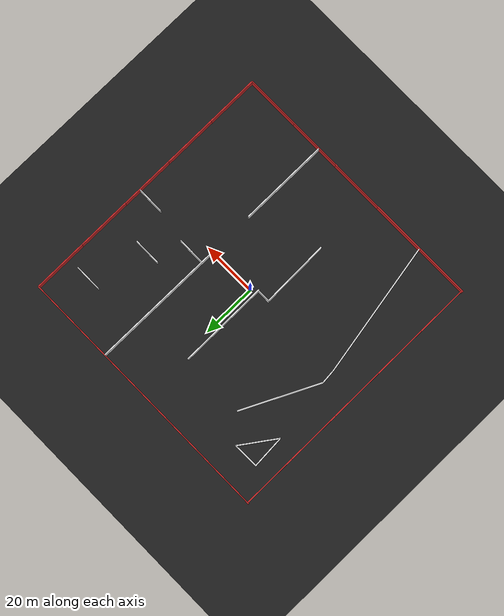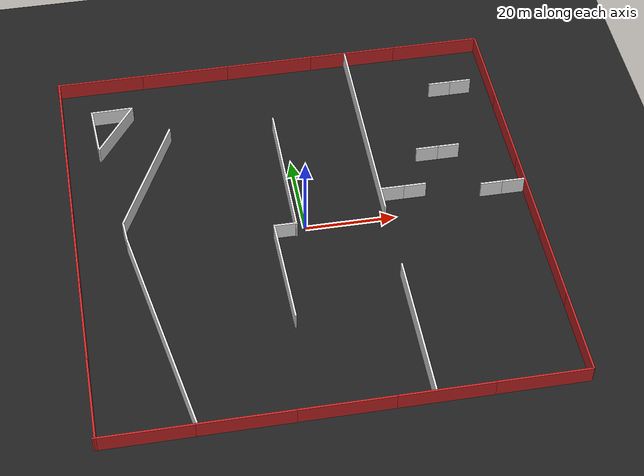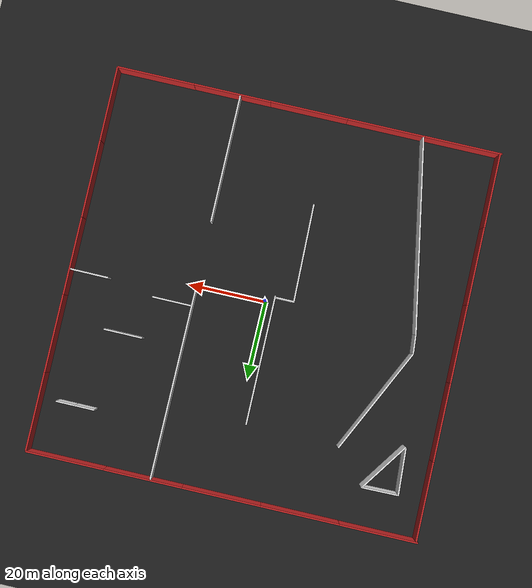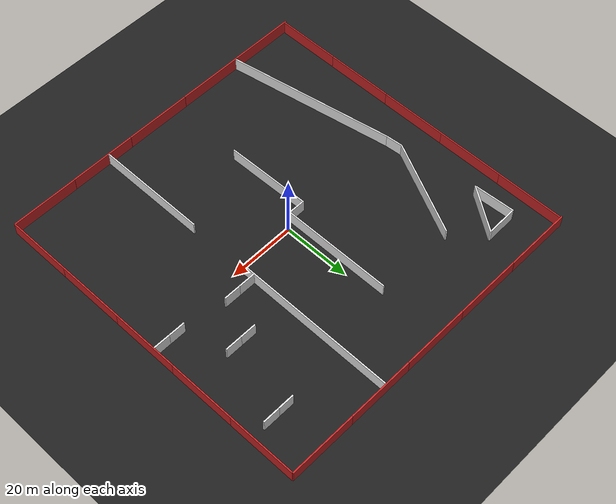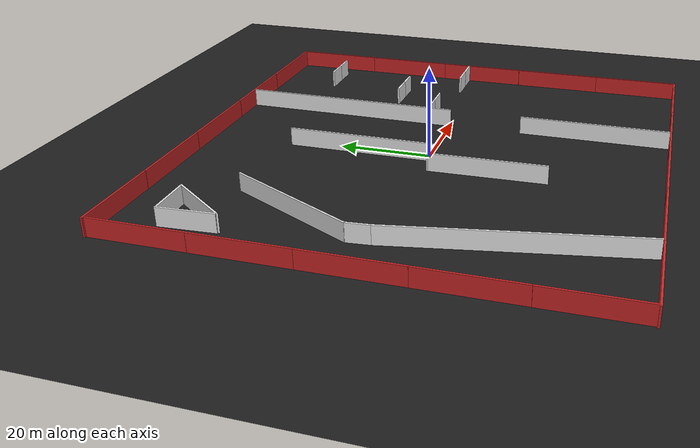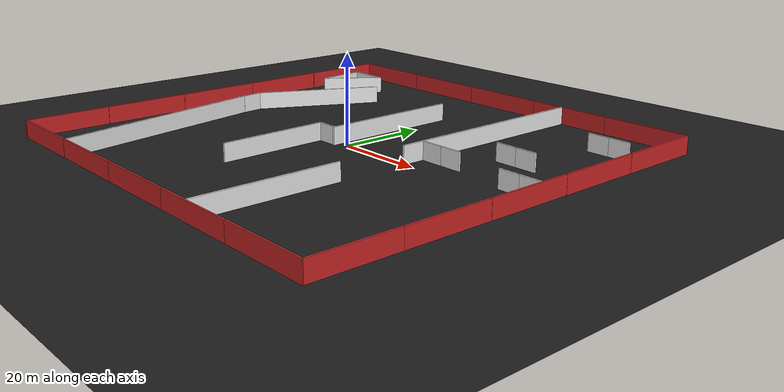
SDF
<sdf version="1.6">
 <world name="default">
  <model name="ground_plane">
   <static>1</static>
   <link name="link">
    <collision name="collision">
     <geometry><plane><normal>0 0 1</normal><size>1000 1000</size></plane></geometry>
     <surface><friction><ode><mu>100000</mu><mu2>50000</mu2></ode></friction></surface>
    </collision>
    <visual name="visual">
     <cast_shadows>0</cast_shadows>
     <geometry><plane><normal>0 0 1</normal><size>100 100</size></plane></geometry>
     <material>
      <script><uri>file://media/materials/scripts/gazebo.material</uri><name>Gazebo/Black</name></script>
     </material>
    </visual>
   </link>
  </model>
  <model name="grey_wall">
   <static>1</static>
   <link name="link">
    <pose>0 0 1.4 0 -0 0</pose>
    <collision name="collision"><geometry><box><size>20 0.4 4</size></box></geometry></collision>
    <visual name="visual">
     <cast_shadows>0</cast_shadows>
     <geometry><box><size>20 0.4 4</size></box></geometry>
     <material>
      <script>
       <uri>model://grey_wall/materials/scripts</uri>
       <uri>model://grey_wall/materials/textures</uri>
       <name>Gazebo/Red</name>
      </script>
     </material>
    </visual>
   </link>
   <pose>39.8972 -49.6685 0.7 0 -0 0</pose>
  </model>
  <model name="grey_wall_clone">
   <static>1</static>
   <link name="link">
    <pose>0 0 1.4 0 -0 0</pose>
    <collision name="collision"><geometry><box><size>20 0.4 4</size></box></geometry></collision>
    <visual name="visual">
     <cast_shadows>0</cast_shadows>
     <geometry><box><size>20 0.4 4</size></box></geometry>
     <material>
      <script>
       <uri>model://grey_wall/materials/scripts</uri>
       <uri>model://grey_wall/materials/textures</uri>
       <name>Gazebo/Red</name>
      </script>
     </material>
    </visual>
   </link>
   <pose>20.0314 -49.6981 0.7 0 -0 0</pose>
  </model>
  <model name="grey_wall_clone_clone">
   <static>1</static>
   <link name="link">
    <pose>0 0 1.4 0 -0 0</pose>
    <collision name="collision"><geometry><box><size>20 0.4 4</size></box></geometry></collision>
    <visual name="visual">
     <cast_shadows>0</cast_shadows>
     <geometry><box><size>20 0.4 4</size></box></geometry>
     <material>
      <script>
       <uri>model://grey_wall/materials/scripts</uri>
       <uri>model://grey_wall/materials/textures</uri>
       <name>Gazebo/Red</name>
      </script>
     </material>
    </visual>
   </link>
   <pose>0.023572 -49.723 0.7 0 -0 0</pose>
  </model>
  <model name="grey_wall_clone_clone_0">
   <static>1</static>
   <link name="link">
    <pose>0 0 1.4 0 -0 0</pose>
    <collision name="collision"><geometry><box><size>20 0.4 4</size></box></geometry></collision>
    <visual name="visual">
     <cast_shadows>0</cast_shadows>
     <geometry><box><size>20 0.4 4</size></box></geometry>
     <material>
      <script>
       <uri>model://grey_wall/materials/scripts</uri>
       <uri>model://grey_wall/materials/textures</uri>
       <name>Gazebo/Red</name>
      </script>
     </material>
    </visual>
   </link>
   <pose>-19.977 -49.7441 0.7 0 -0 0</pose>
  </model>
  <model name="grey_wall_clone_clone_1">
   <static>1</static>
   <link name="link">
    <pose>0 0 1.4 0 -0 0</pose>
    <collision name="collision"><geometry><box><size>20 0.4 4</size></box></geometry></collision>
    <visual name="visual">
     <cast_shadows>0</cast_shadows>
     <geometry><box><size>20 0.4 4</size></box></geometry>
     <material>
      <script>
       <uri>model://grey_wall/materials/scripts</uri>
       <uri>model://grey_wall/materials/textures</uri>
       <name>Gazebo/Red</name>
      </script>
     </material>
    </visual>
   </link>
   <pose>-39.9743 -49.7801 0.7 0 -0 0</pose>
  </model>
  <model name="grey_wall_clone_clone_1_clone">
   <static>1</static>
   <link name="link">
    <pose>0 0 1.4 0 -0 0</pose>
    <collision name="collision"><geometry><box><size>20 0.4 4</size></box></geometry></collision>
    <visual name="visual">
     <cast_shadows>0</cast_shadows>
     <geometry><box><size>20 0.4 4</size></box></geometry>
     <material>
      <script>
       <uri>model://grey_wall/materials/scripts</uri>
       <uri>model://grey_wall/materials/textures</uri>
       <name>Gazebo/Red</name>
      </script>
     </material>
    </visual>
   </link>
   <pose>-40.2602 49.7183 0.7 0 -0 0</pose>
  </model>
  <model name="grey_wall_clone_clone_0_clone">
   <static>1</static>
   <link name="link">
    <pose>0 0 1.4 0 -0 0</pose>
    <collision name="collision"><geometry><box><size>20 0.4 4</size></box></geometry></collision>
    <visual name="visual">
     <cast_shadows>0</cast_shadows>
     <geometry><box><size>20 0.4 4</size></box></geometry>
     <material>
      <script>
       <uri>model://grey_wall/materials/scripts</uri>
       <uri>model://grey_wall/materials/textures</uri>
       <name>Gazebo/Red</name>
      </script>
     </material>
    </visual>
   </link>
   <pose>-20.266 49.6914 0.7 0 -0 0</pose>
  </model>
  <model name="grey_wall_clone_clone_clone">
   <static>1</static>
   <link name="link">
    <pose>0 0 1.4 0 -0 0</pose>
    <collision name="collision"><geometry><box><size>20 0.4 4</size></box></geometry></collision>
    <visual name="visual">
     <cast_shadows>0</cast_shadows>
     <geometry><box><size>20 0.4 4</size></box></geometry>
     <material>
      <script>
       <uri>model://grey_wall/materials/scripts</uri>
       <uri>model://grey_wall/materials/textures</uri>
       <name>Gazebo/Red</name>
      </script>
     </material>
    </visual>
   </link>
   <pose>-0.276509 49.6923 0.7 0 -0 0</pose>
  </model>
  <model name="grey_wall_clone_clone_2">
   <static>1</static>
   <link name="link">
    <pose>0 0 1.4 0 -0 0</pose>
    <collision name="collision"><geometry><box><size>20 0.4 4</size></box></geometry></collision>
    <visual name="visual">
     <cast_shadows>0</cast_shadows>
     <geometry><box><size>20 0.4 4</size></box></geometry>
     <material>
      <script>
       <uri>model://grey_wall/materials/scripts</uri>
       <uri>model://grey_wall/materials/textures</uri>
       <name>Gazebo/Red</name>
      </script>
     </material>
    </visual>
   </link>
   <pose>19.7279 49.6943 0.7 0 -0 0</pose>
  </model>
  <model name="grey_wall_clone_0">
   <static>1</static>
   <link name="link">
    <pose>0 0 1.4 0 -0 0</pose>
    <collision name="collision"><geometry><box><size>20 0.4 4</size></box></geometry></collision>
    <visual name="visual">
     <cast_shadows>0</cast_shadows>
     <geometry><box><size>20 0.4 4</size></box></geometry>
     <material>
      <script>
       <uri>model://grey_wall/materials/scripts</uri>
       <uri>model://grey_wall/materials/textures</uri>
       <name>Gazebo/Red</name>
      </script>
     </material>
    </visual>
   </link>
   <pose>39.6209 49.6898 0.7 0 -0 0</pose>
  </model>
  <model name="grey_wall_clone_0_clone">
   <static>1</static>
   <link name="link">
    <pose>0 0 1.4 0 -0 0</pose>
    <collision name="collision"><geometry><box><size>20 0.4 4</size></box></geometry></collision>
    <visual name="visual">
     <cast_shadows>0</cast_shadows>
     <geometry><box><size>20 0.4 4</size></box></geometry>
     <material>
      <script>
       <uri>model://grey_wall/materials/scripts</uri>
       <uri>model://grey_wall/materials/textures</uri>
       <name>Gazebo/Red</name>
      </script>
     </material>
    </visual>
   </link>
   <pose>49.6182 39.5429 0.7 0 -0 1.57482</pose>
  </model>
  <model name="grey_wall_clone_0_clone_clone">
   <static>1</static>
   <link name="link">
    <pose>0 0 1.4 0 -0 0</pose>
    <collision name="collision"><geometry><box><size>20 0.4 4</size></box></geometry></collision>
    <visual name="visual">
     <cast_shadows>0</cast_shadows>
     <geometry><box><size>20 0.4 4</size></box></geometry>
     <material>
      <script>
       <uri>model://grey_wall/materials/scripts</uri>
       <uri>model://grey_wall/materials/textures</uri>
       <name>Gazebo/Red</name>
      </script>
     </material>
    </visual>
   </link>
   <pose>49.6762 19.6308 0.7 0 -0 1.57482</pose>
  </model>
  <model name="grey_wall_clone_0_clone_clone_0">
   <static>1</static>
   <link name="link">
    <pose>0 0 1.4 0 -0 0</pose>
    <collision name="collision"><geometry><box><size>20 0.4 4</size></box></geometry></collision>
    <visual name="visual">
     <cast_shadows>0</cast_shadows>
     <geometry><box><size>20 0.4 4</size></box></geometry>
     <material>
      <script>
       <uri>model://grey_wall/materials/scripts</uri>
       <uri>model://grey_wall/materials/textures</uri>
       <name>Gazebo/Red</name>
      </script>
     </material>
    </visual>
   </link>
   <pose>49.727 -0.354519 0.7 0 -0 1.57482</pose>
  </model>
  <model name="grey_wall_clone_0_clone_clone_1">
   <static>1</static>
   <link name="link">
    <pose>0 0 1.4 0 -0 0</pose>
    <collision name="collision"><geometry><box><size>20 0.4 4</size></box></geometry></collision>
    <visual name="visual">
     <cast_shadows>0</cast_shadows>
     <geometry><box><size>20 0.4 4</size></box></geometry>
     <material>
      <script>
       <uri>model://grey_wall/materials/scripts</uri>
       <uri>model://grey_wall/materials/textures</uri>
       <name>Gazebo/Red</name>
      </script>
     </material>
    </visual>
   </link>
   <pose>49.7933 -20.3785 0.7 0 -0 1.57482</pose>
  </model>
  <model name="grey_wall_clone_0_clone_clone_2">
   <static>1</static>
   <link name="link">
    <pose>0 0 1.4 0 -0 0</pose>
    <collision name="collision"><geometry><box><size>19.4 0.4 4</size></box></geometry></collision>
    <visual name="visual">
     <cast_shadows>0</cast_shadows>
     <geometry><box><size>19.4 0.4 4</size></box></geometry>
     <material>
      <script>
       <uri>model://grey_wall/materials/scripts</uri>
       <uri>model://grey_wall/materials/textures</uri>
       <name>Gazebo/Red</name>
      </script>
     </material>
    </visual>
   </link>
   <pose>49.8768 -39.9777 0.7 0 -0 1.57482</pose>
  </model>
  <model name="grey_wall_clone_0_clone_clone_2_clone">
   <static>1</static>
   <link name="link">
    <pose>0 0 1.4 0 -0 0</pose>
    <collision name="collision"><geometry><box><size>19.4 0.4 4</size></box></geometry></collision>
    <visual name="visual">
     <cast_shadows>0</cast_shadows>
     <geometry><box><size>19.4 0.4 4</size></box></geometry>
     <material>
      <script>
       <uri>model://grey_wall/materials/scripts</uri>
       <uri>model://grey_wall/materials/textures</uri>
       <name>Gazebo/Red</name>
      </script>
     </material>
    </visual>
   </link>
   <pose>-49.472 -40.3053 0.7 0 -0 1.57482</pose>
  </model>
  <model name="grey_wall_clone_0_clone_clone_3">
   <static>1</static>
   <link name="link">
    <pose>0 0 1.4 0 -0 0</pose>
    <collision name="collision"><geometry><box><size>20 0.4 4</size></box></geometry></collision>
    <visual name="visual">
     <cast_shadows>0</cast_shadows>
     <geometry><box><size>20 0.4 4</size></box></geometry>
     <material>
      <script>
       <uri>model://grey_wall/materials/scripts</uri>
       <uri>model://grey_wall/materials/textures</uri>
       <name>Gazebo/Red</name>
      </script>
     </material>
    </visual>
   </link>
   <pose>-49.5264 -20.576 0.7 0 -0 1.57482</pose>
  </model>
  <model name="grey_wall_clone_0_clone_clone_4">
   <static>1</static>
   <link name="link">
    <pose>0 0 1.4 0 -0 0</pose>
    <collision name="collision"><geometry><box><size>20 0.4 4</size></box></geometry></collision>
    <visual name="visual">
     <cast_shadows>0</cast_shadows>
     <geometry><box><size>20 0.4 4</size></box></geometry>
     <material>
      <script>
       <uri>model://grey_wall/materials/scripts</uri>
       <uri>model://grey_wall/materials/textures</uri>
       <name>Gazebo/Red</name>
      </script>
     </material>
    </visual>
   </link>
   <pose>-49.5869 -0.554317 0.7 0 -0 1.57482</pose>
  </model>
  <model name="grey_wall_clone_0_clone_clone_5">
   <static>1</static>
   <link name="link">
    <pose>0 0 1.4 0 -0 0</pose>
    <collision name="collision"><geometry><box><size>20 0.4 4</size></box></geometry></collision>
    <visual name="visual">
     <cast_shadows>0</cast_shadows>
     <geometry><box><size>20 0.4 4</size></box></geometry>
     <material>
      <script>
       <uri>model://grey_wall/materials/scripts</uri>
       <uri>model://grey_wall/materials/textures</uri>
       <name>Gazebo/Red</name>
      </script>
     </material>
    </visual>
   </link>
   <pose>-49.6522 19.4313 0.7 0 -0 1.57482</pose>
  </model>
  <model name="grey_wall_clone_0_clone_clone_6">
   <static>1</static>
   <link name="link">
    <pose>0 0 1.4 0 -0 0</pose>
    <collision name="collision"><geometry><box><size>20 0.4 4</size></box></geometry></collision>
    <visual name="visual">
     <cast_shadows>0</cast_shadows>
     <geometry><box><size>20 0.4 4</size></box></geometry>
     <material>
      <script>
       <uri>model://grey_wall/materials/scripts</uri>
       <uri>model://grey_wall/materials/textures</uri>
       <name>Gazebo/Red</name>
      </script>
     </material>
    </visual>
   </link>
   <pose>-49.7102 39.4577 0.7 0 -0 1.57482</pose>
  </model>
  <model name="grey_wall_0">
   <static>1</static>
   <link name="link">
    <pose>0 0 1.4 0 -0 0</pose>
    <collision name="collision"><geometry><box><size>50 0.4 4</size></box></geometry></collision>
    <visual name="visual">
     <cast_shadows>0</cast_shadows>
     <geometry><box><size>50 0.4 4</size></box></geometry>
     <material>
      <script>
       <uri>model://grey_wall/materials/scripts</uri>
       <uri>model://grey_wall/materials/textures</uri>
       <name>Gazebo/White</name>
      </script>
     </material>
    </visual>
   </link>
   <pose>-34.1056 -24.9645 0.7 0 -0 1.75069</pose>
  </model>
  <model name="grey_wall_1">
   <static>1</static>
   <link name="link">
    <pose>0 0 1.4 0 -0 0</pose>
    <collision name="collision"><geometry><box><size>5 0.4 4</size></box></geometry></collision>
    <visual name="visual">
     <cast_shadows>0</cast_shadows>
     <geometry><box><size>5 0.4 4</size></box></geometry>
     <material>
      <script>
       <uri>model://grey_wall/materials/scripts</uri>
       <uri>model://grey_wall/materials/textures</uri>
       <name>Gazebo/White</name>
      </script>
     </material>
    </visual>
   </link>
   <pose>-38.7738 2.08756 0.7 0 0 -1.48449</pose>
  </model>
  <model name="grey_wall_2_clone">
   <static>1</static>
   <link name="link">
    <pose>0 0 1.4 0 -0 0</pose>
    <collision name="collision"><geometry><box><size>30 0.4 4</size></box></geometry></collision>
    <visual name="visual">
     <cast_shadows>0</cast_shadows>
     <geometry><box><size>30 0.4 4</size></box></geometry>
     <material>
      <script>
       <uri>model://grey_wall/materials/scripts</uri>
       <uri>model://grey_wall/materials/textures</uri>
       <name>Gazebo/White</name>
      </script>
     </material>
    </visual>
   </link>
   <pose>-32.4649 17.8517 0.7 0 0 -2.02397</pose>
  </model>
  <model name="grey_wall_2">
   <static>1</static>
   <link name="link">
    <pose>0 0 1.4 0 -0 0</pose>
    <collision name="collision"><geometry><box><size>15 0.4 4</size></box></geometry></collision>
    <visual name="visual">
     <cast_shadows>0</cast_shadows>
     <geometry><box><size>15 0.4 4</size></box></geometry>
     <material>
      <script>
       <uri>model://grey_wall/materials/scripts</uri>
       <uri>model://grey_wall/materials/textures</uri>
       <name>Gazebo/White</name>
      </script>
     </material>
    </visual>
   </link>
   <pose>-37.948 33.5051 0.7 0 0 -2.18263</pose>
  </model>
  <model name="grey_wall_1_clone_clone">
   <static>1</static>
   <link name="link">
    <pose>0 0 1.4 0 -0 0</pose>
    <collision name="collision"><geometry><box><size>9 0.4 4</size></box></geometry></collision>
    <visual name="visual">
     <cast_shadows>0</cast_shadows>
     <geometry><box><size>9 0.4 4</size></box></geometry>
     <material>
      <script>
       <uri>model://grey_wall/materials/scripts</uri>
       <uri>model://grey_wall/materials/textures</uri>
       <name>Gazebo/White</name>
      </script>
     </material>
    </visual>
   </link>
   <pose>-38.2883 39.4588 0.7 0 -0 0.015026</pose>
  </model>
  <model name="grey_wall_1_clone">
   <static>1</static>
   <link name="link">
    <pose>0 0 1.4 0 -0 0</pose>
    <collision name="collision"><geometry><box><size>12 0.4 4</size></box></geometry></collision>
    <visual name="visual">
     <cast_shadows>0</cast_shadows>
     <geometry><box><size>12 0.4 4</size></box></geometry>
     <material>
      <script>
       <uri>model://grey_wall/materials/scripts</uri>
       <uri>model://grey_wall/materials/textures</uri>
       <name>Gazebo/White</name>
      </script>
     </material>
    </visual>
   </link>
   <pose>-42.632 33.5878 0.7 0 0 -1.51262</pose>
  </model>
  <model name="grey_wall_2_clone_clone">
   <static>1</static>
   <link name="link">
    <pose>0 0 1.4 0 -0 0</pose>
    <collision name="collision"><geometry><box><size>33 0.4 4</size></box></geometry></collision>
    <visual name="visual">
     <cast_shadows>0</cast_shadows>
     <geometry><box><size>33 0.4 4</size></box></geometry>
     <material>
      <script>
       <uri>model://grey_wall/materials/scripts</uri>
       <uri>model://grey_wall/materials/textures</uri>
       <name>Gazebo/White</name>
      </script>
     </material>
    </visual>
   </link>
   <pose>-2.2386 14.4813 0.7 0 0 -1.56757</pose>
  </model>
  <model name="grey_wall_0_clone_clone">
   <static>1</static>
   <link name="link">
    <pose>0 0 1.4 0 -0 0</pose>
    <collision name="collision"><geometry><box><size>50 0.4 4</size></box></geometry></collision>
    <visual name="visual">
     <cast_shadows>0</cast_shadows>
     <geometry><box><size>50 0.4 4</size></box></geometry>
     <material>
      <script>
       <uri>model://grey_wall/materials/scripts</uri>
       <uri>model://grey_wall/materials/textures</uri>
       <name>Gazebo/White</name>
      </script>
     </material>
    </visual>
   </link>
   <pose>17.7252 24.7373 0.7 0 -0 1.56745</pose>
  </model>
  <model name="grey_wall_2_clone_clone_clone">
   <static>1</static>
   <link name="link">
    <pose>0 0 1.4 0 -0 0</pose>
    <collision name="collision"><geometry><box><size>33 0.4 4</size></box></geometry></collision>
    <visual name="visual">
     <cast_shadows>0</cast_shadows>
     <geometry><box><size>33 0.4 4</size></box></geometry>
     <material>
      <script>
       <uri>model://grey_wall/materials/scripts</uri>
       <uri>model://grey_wall/materials/textures</uri>
       <name>Gazebo/White</name>
      </script>
     </material>
    </visual>
   </link>
   <pose>17.8529 -33.037 0.7 0 0 -1.56861</pose>
  </model>
  <model name="grey_wall_2_clone_clone_clone_0">
   <static>1</static>
   <link name="link">
    <pose>0 0 1.4 0 -0 0</pose>
    <collision name="collision"><geometry><box><size>25 0.4 4</size></box></geometry></collision>
    <visual name="visual">
     <cast_shadows>0</cast_shadows>
     <geometry><box><size>25 0.4 4</size></box></geometry>
     <material>
      <script>
       <uri>model://grey_wall/materials/scripts</uri>
       <uri>model://grey_wall/materials/textures</uri>
       <name>Gazebo/White</name>
      </script>
     </material>
    </visual>
   </link>
   <pose>-6.74039 -14.1727 0.7 0 0 -1.54821</pose>
  </model>
  <model name="grey_wall_1_clone_1">
   <static>1</static>
   <link name="link">
    <pose>0 0 1.4 0 -0 0</pose>
    <collision name="collision"><geometry><box><size>5 0.4 4</size></box></geometry></collision>
    <visual name="visual">
     <cast_shadows>0</cast_shadows>
     <geometry><box><size>5 0.4 4</size></box></geometry>
     <material>
      <script>
       <uri>model://grey_wall/materials/scripts</uri>
       <uri>model://grey_wall/materials/textures</uri>
       <name>Gazebo/White</name>
      </script>
     </material>
    </visual>
   </link>
   <pose>42.179 3.01857 0.7 0 0 -0.00371</pose>
  </model>
  <model name="grey_wall_1_clone_1_clone">
   <static>1</static>
   <link name="link">
    <pose>0 0 1.4 0 -0 0</pose>
    <collision name="collision"><geometry><box><size>5 0.4 4</size></box></geometry></collision>
    <visual name="visual">
     <cast_shadows>0</cast_shadows>
     <geometry><box><size>5 0.4 4</size></box></geometry>
     <material>
      <script>
       <uri>model://grey_wall/materials/scripts</uri>
       <uri>model://grey_wall/materials/textures</uri>
       <name>Gazebo/White</name>
      </script>
     </material>
    </visual>
   </link>
   <pose>47.041 2.9894 0.7 0 0 -0.00371</pose>
  </model>
  <model name="grey_wall_1_clone_1_clone_0">
   <static>1</static>
   <link name="link">
    <pose>0 0 1.4 0 -0 0</pose>
    <collision name="collision"><geometry><box><size>5 0.4 4</size></box></geometry></collision>
    <visual name="visual">
     <cast_shadows>0</cast_shadows>
     <geometry><box><size>5 0.4 4</size></box></geometry>
     <material>
      <script>
       <uri>model://grey_wall/materials/scripts</uri>
       <uri>model://grey_wall/materials/textures</uri>
       <name>Gazebo/White</name>
      </script>
     </material>
    </visual>
   </link>
   <pose>20.3546 5.18242 0.7 0 0 -0.00371</pose>
  </model>
  <model name="grey_wall_1_clone_1_clone_1">
   <static>1</static>
   <link name="link">
    <pose>0 0 1.4 0 -0 0</pose>
    <collision name="collision"><geometry><box><size>5 0.4 4</size></box></geometry></collision>
    <visual name="visual">
     <cast_shadows>0</cast_shadows>
     <geometry><box><size>5 0.4 4</size></box></geometry>
     <material>
      <script>
       <uri>model://grey_wall/materials/scripts</uri>
       <uri>model://grey_wall/materials/textures</uri>
       <name>Gazebo/White</name>
      </script>
     </material>
    </visual>
   </link>
   <pose>25.3469 5.17491 0.7 0 0 -0.00371</pose>
  </model>
  <model name="grey_wall_1_clone_1_clone_2">
   <static>1</static>
   <link name="link">
    <pose>0 0 1.4 0 -0 0</pose>
    <collision name="collision"><geometry><box><size>5 0.4 4</size></box></geometry></collision>
    <visual name="visual">
     <cast_shadows>0</cast_shadows>
     <geometry><box><size>5 0.4 4</size></box></geometry>
     <material>
      <script>
       <uri>model://grey_wall/materials/scripts</uri>
       <uri>model://grey_wall/materials/textures</uri>
       <name>Gazebo/White</name>
      </script>
     </material>
    </visual>
   </link>
   <pose>30.401 15.8083 0.7 0 0 -0.00371</pose>
  </model>
  <model name="grey_wall_1_clone_1_clone_3">
   <static>1</static>
   <link name="link">
    <pose>0 0 1.4 0 -0 0</pose>
    <collision name="collision"><geometry><box><size>5 0.4 4</size></box></geometry></collision>
    <visual name="visual">
     <cast_shadows>0</cast_shadows>
     <geometry><box><size>5 0.4 4</size></box></geometry>
     <material>
      <script>
       <uri>model://grey_wall/materials/scripts</uri>
       <uri>model://grey_wall/materials/textures</uri>
       <name>Gazebo/White</name>
      </script>
     </material>
    </visual>
   </link>
   <pose>35.2535 15.7966 0.7 0 0 -0.00371</pose>
  </model>
  <model name="grey_wall_1_clone_1_clone_4">
   <static>1</static>
   <link name="link">
    <pose>0 0 1.4 0 -0 0</pose>
    <collision name="collision"><geometry><box><size>5 0.4 4</size></box></geometry></collision>
    <visual name="visual">
     <cast_shadows>0</cast_shadows>
     <geometry><box><size>5 0.4 4</size></box></geometry>
     <material>
      <script>
       <uri>model://grey_wall/materials/scripts</uri>
       <uri>model://grey_wall/materials/textures</uri>
       <name>Gazebo/White</name>
      </script>
     </material>
    </visual>
   </link>
   <pose>37.8082 35.9046 0.7 0 0 -0.00371</pose>
  </model>
  <model name="grey_wall_1_clone_1_clone_5">
   <static>1</static>
   <link name="link">
    <pose>0 0 1.4 0 -0 0</pose>
    <collision name="collision"><geometry><box><size>5 0.4 4</size></box></geometry></collision>
    <visual name="visual">
     <cast_shadows>0</cast_shadows>
     <geometry><box><size>5 0.4 4</size></box></geometry>
     <material>
      <script>
       <uri>model://grey_wall/materials/scripts</uri>
       <uri>model://grey_wall/materials/textures</uri>
       <name>Gazebo/White</name>
      </script>
     </material>
    </visual>
   </link>
   <pose>42.6574 35.9047 0.7 0 0 -0.00371</pose>
  </model>
  <model name="grey_wall_1_clone_1_clone_1_clone">
   <static>1</static>
   <link name="link">
    <pose>0 0 1.4 0 -0 0</pose>
    <collision name="collision"><geometry><box><size>5 0.4 4</size></box></geometry></collision>
    <visual name="visual">
     <cast_shadows>0</cast_shadows>
     <geometry><box><size>5 0.4 4</size></box></geometry>
     <material>
      <script>
       <uri>model://grey_wall/materials/scripts</uri>
       <uri>model://grey_wall/materials/textures</uri>
       <name>Gazebo/White</name>
      </script>
     </material>
    </visual>
   </link>
   <pose>-4.71302 -1.6028 0.7 0 0 -0.00371</pose>
  </model>
 </world>
</sdf>
